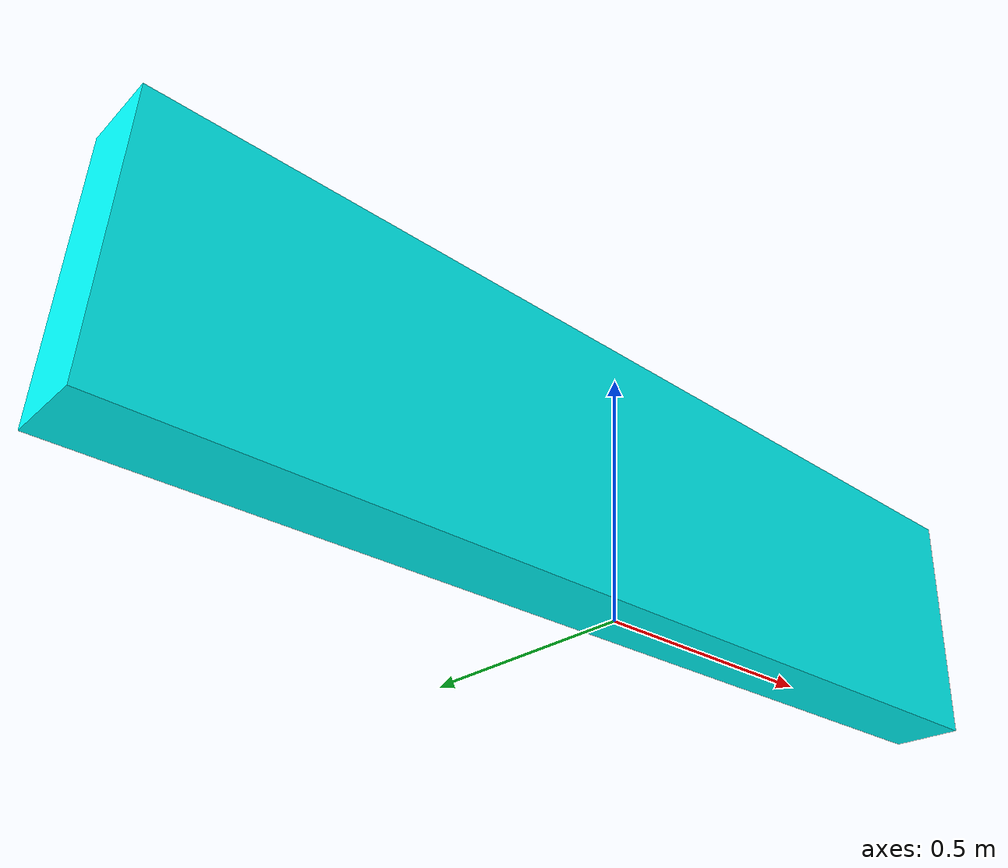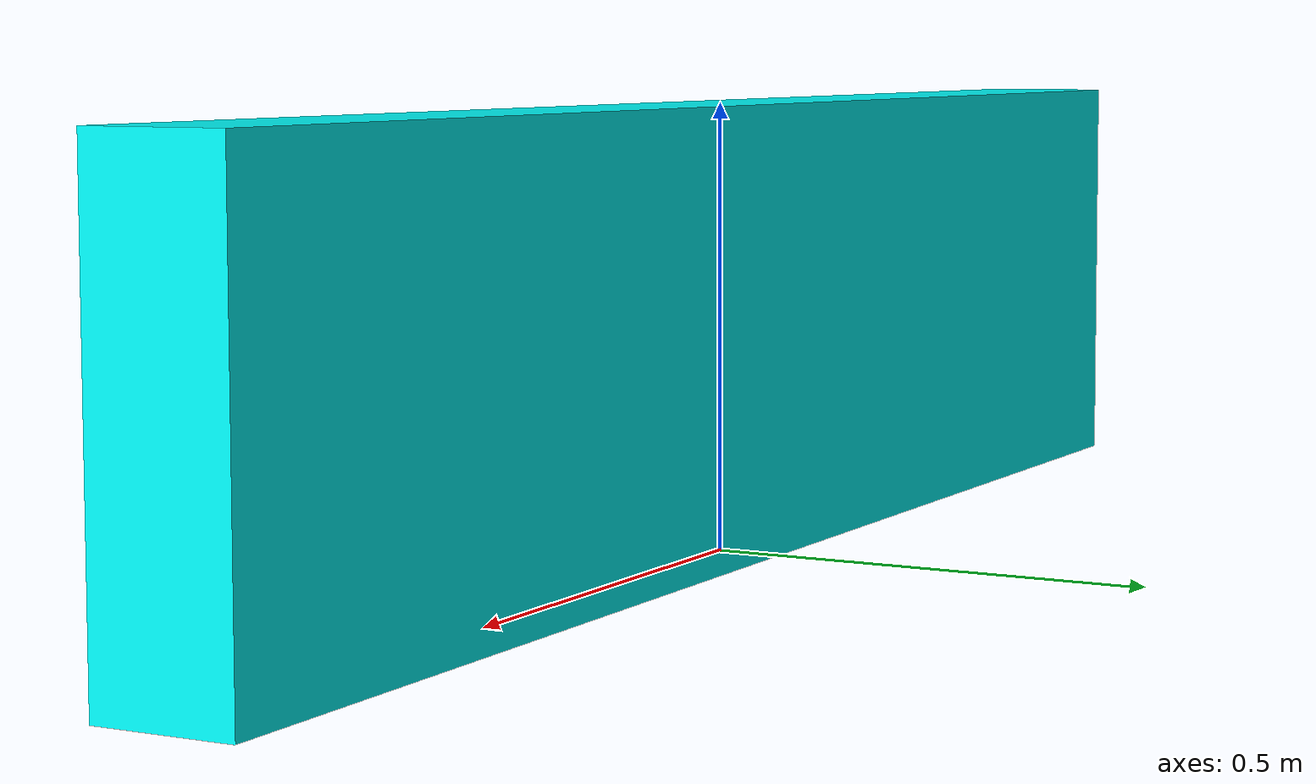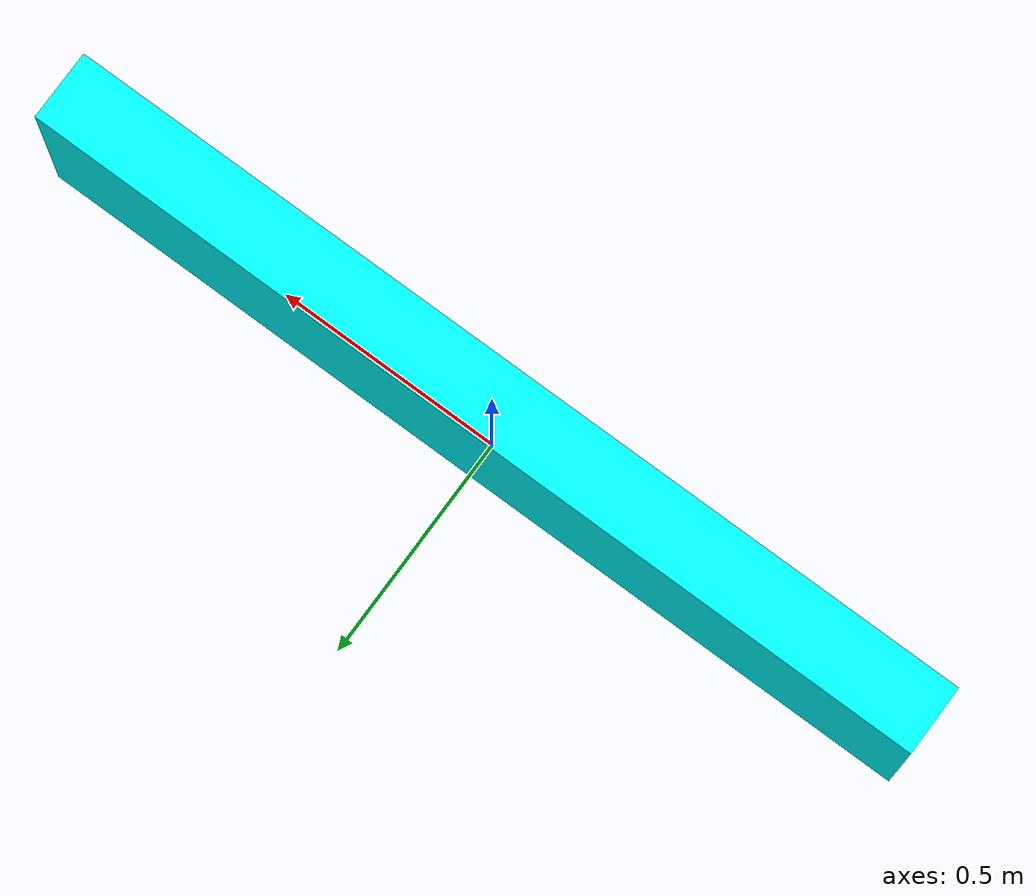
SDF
<?xml version="1.0" ?>
<sdf version='1.6'>
  <model name='wall'>
    <link name='Wall_11'>
      <collision name='Wall_11_Collision'>
        <geometry>
          <box>
            <size>2. 0.15 0.5</size>
          </box>
        </geometry>
        <pose frame=''>0 0 0.25 0 -0 0</pose>
        <max_contacts>10</max_contacts>
        <surface>
          <contact>
            <ode/>
          </contact>
          <bounce/>
          <friction>
            <torsional>
              <ode/>
            </torsional>
            <ode/>
          </friction>
        </surface>
      </collision>
      <visual name='Wall_11_Visual'>
        <pose frame=''>0 0 0.25 0 -0 0</pose>
        <geometry>
          <box>
            <size>2. 0.15 0.5</size>
          </box>
        </geometry>
        <material>
          <ambient>0 1 1 1</ambient>
        </material>
        <meta>
          <layer>0</layer>
        </meta>
      </visual>
    </link>
  </model>
</sdf>
